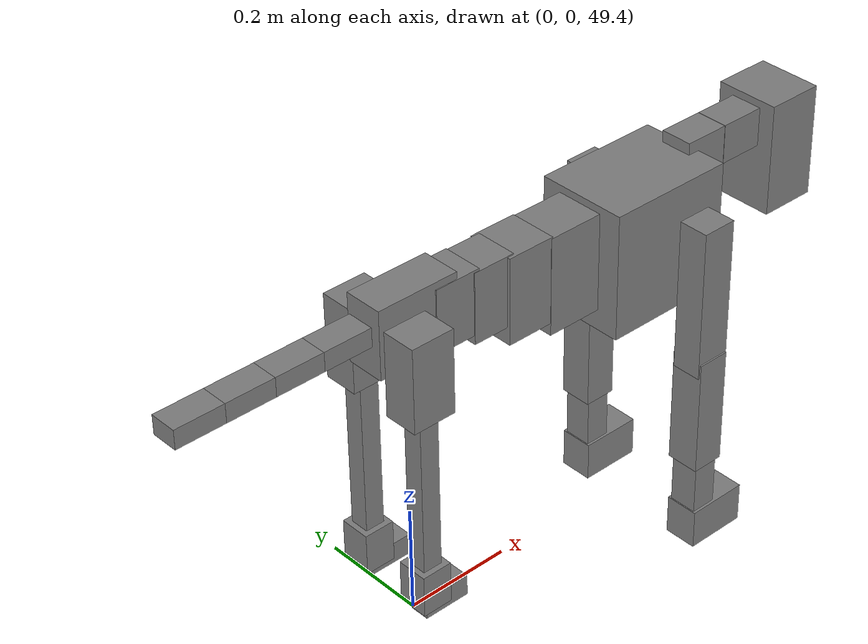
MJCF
<mujoco model="dog">

    <default>
        <joint armature="0.02" stiffness="1" damping="0.2" limited="true"/>
        <geom condim="3" friction="1 0.05 0.05" margin="0.01"/>
        <motor ctrllimited="true" ctrlrange="-1.0 1.0" forcelimited="true" gear="50"/>
    </default>

    <compiler inertiafromgeom="true" angle="radian"/>

    <option timestep="0.016" iterations="50" tolerance="1e-10" solver="Newton" jacobian="dense" cone="pyramidal"/>

    <size nconmax="20000" njmax="60000" nstack="5000000"/>
    <visual>
        <map force="0.1" zfar="30"/>
        <rgba haze="0.15 0.25 0.35 1"/>
        <quality shadowsize="2048"/>
        <global offwidth="800" offheight="800"/>
    </visual>

    <asset>
        <texture type="skybox" builtin="gradient" rgb1="0.3 0.5 0.7" rgb2="0 0 0" width="512" height="512"/>
        <texture name="texplane" type="2d" builtin="checker" rgb1=".2 .3 .4" rgb2=".1 0.15 0.2" width="512" height="512"
                 mark="cross" markrgb=".8 .8 .8"/>
        <texture name="texgeom" type="cube" builtin="flat" mark="cross" width="127" height="1278" rgb1="0.8 0.6 0.4"
                 rgb2="0.8 0.6 0.4" markrgb="1 1 1" random="0.01"/>

        <material name="matplane" reflectance="0.3" texture="texplane" texrepeat="1 1" texuniform="true"/>
        <material name="matgeom" texture="texgeom" texuniform="true" rgba="0.8 0.6 .4 1"/>
    </asset>

    <worldbody>
        <geom name="floor" pos="0 0 0" size="0 0 .25" type="plane" material="matplane" condim="3"/>

        <light directional="false" diffuse=".2 .2 .2" specular="0 0 0" pos="0 0 5" dir="0 0 -1" castshadow="false"/>
        <light mode="targetbodycom" target="torso" directional="false" diffuse=".8 .8 .8" specular="0.3 0.3 0.3"
               pos="0 0 4.0" dir="0 0 -1"/>

        <body name="root" pos="0 0 50">
            <freejoint name="root_1"/>
            <geom type="box" pos="0 0 -0.02" size="0.0774  0.0358  0.063" density="2030"/>

            <body name="spine1" pos="0.054 0 0">
                <joint name="spine1_y" axis="0 1 0" range="0 0.7" limited="true"/>
                <geom type="box" pos="0.02375 0 -0.03" size="0.04375  0.0375  0.05985" density="2030"/>

                <body name="spine2" pos="0.0612 0 0">
                    <joint name="spine2_y" axis="0 1 0" range="-0.15 0.15" limited="true"/>
                    <geom type="box" pos="0.03555  0  -0.04" size="0.04055  0.039  0.06615" density="2030"/>

                    <body name="spine3" pos="0.0730 0 0">
                        <joint name="spine3_y" axis="0 1 0" range="-0.15 0.15" limited="true"/>
                        <geom type="box" pos="0.03555  0  -0.057" size="0.04555  0.0445  0.081" density="2030"/>

                        <body name="spine4" pos="0.0780 0 0">
                            <joint name="spine4_y" axis="0 1 0" range="-0.15 0.15" limited="true"/>
                            <geom type="box" pos="0.05265  0  -0.07" size="0.05265  0.045  0.09135" density="2030"/>

                            <body name="torso" pos="0.1082 0 0">
                                <joint name="torso_y" axis="0 1 0" range="-0.15 0.15" limited="true"/>
                                <geom type="box" pos="0.11925  0  -0.085" size="0.11925  0.085  0.11745"
                                      density="2030"/>

                                <body name="neck1" pos="0.2160  0   0.0180">
                                    <joint name="neck1_y" axis="0 1 0" range="-1.2  -1" limited="true"/>
                                    <geom type="box" pos="0.0423  0  0" size="0.0423  0.03  0.036" density="2325"/>

                                    <body name="neck2" pos="0.0853  0  0">
                                        <joint name="neck2_y" axis="0 1 0" range="0.1  0" limited="true"/>
                                        <geom type="box" pos="0.0423  0  0" size="0.0423  0.03  0.036" density="2325"/>

                                        <body name="head" pos="0.0853  0  0">
                                            <joint name="head_y" axis="0 1 0" range="-0.3  -0.2" limited="true"/>
                                            <geom type="box" pos="0.0531  0  -0.055" size="0.0531  0.06  0.1044"
                                                  density="4030"/>

                                        </body>
                                    </body>
                                </body>

                                <body name="front_shoulder" pos="0.156  0   -0.0480">
                                    <joint name="front_shoulder_y" axis="0 1 0" range="-1 1.5" limited="true"/>
                                    <geom type="box" pos="0 0.13 -0.1149" size="0.0325  0.0278  0.1416" density="1158"/>
                                    <geom type="box" pos="0 -0.13 -0.1149" size="0.0325  0.0278  0.1416"
                                          density="1158"/>

                                    <body name="front_elbow" pos="0  0  -0.2299">
                                        <joint name="front_elbow_y" axis="0 1 0" range="-2 0" limited="true"/>
                                        <geom type="box" pos="0 0.13 -0.1102" size="0.0302  0.0309  0.1102"
                                              density="1081"/>
                                        <geom type="box" pos="0 -0.13 -0.1102" size="0.0302  0.0309  0.1102"
                                              density="1081"/>

                                        <body name="front_wrist" pos="0  0  -0.2205">
                                            <joint name="front_wrist_y" axis="0 1 0" range="-0.2 0" limited="true"/>
                                            <geom type="box" pos="0 0.13 -0.0545" size="0.0238  0.0264  0.0676"
                                                  density="1664"/>
                                            <geom type="box" pos="0 -0.13 -0.0545" size="0.0238  0.0264  0.0676"
                                                  density="1664"/>

                                            <body name="front_finger_end" pos="0  0  -0.1090">
                                                <joint name="front_finger_y" axis="0 1 0" range="-0.4 1"
                                                       limited="true"/>
                                                <geom type="box" pos="0.0313  0.13  -0.0222"
                                                      size="0.0573  0.0313  0.0372" density="1515"/>
                                                <geom type="box" pos="0.0313  -0.13  -0.0222"
                                                      size="0.0573  0.0313  0.0372" density="1515"/>

                                            </body>

                                        </body>
                                    </body>
                                </body>

                            </body>
                        </body>
                    </body>
                </body>
            </body>

            <body name="back_hip" pos="-0.03 0 -0.018">
                <joint name="back_hip_y" axis="0 1 0" range="-1.5 0.3" limited="true"/>
                <geom type="box" pos="0 0.07 -0.0549" size="0.0406  0.0319  0.0777" density="1154"/>
                <geom type="box" pos="0 -0.07 -0.0549" size="0.0406  0.0319  0.0777" density="1154"/>

                <body name="back_knee" pos="0  0  -0.1099">
                    <joint name="back_knee_y" axis="0 1 0" range="0 2.8" limited="true"/>
                    <geom type="box" pos="0 0.07 -0.1638" size="0.0182  0.0180  0.1794" density="1227"/>
                    <geom type="box" pos="0 -0.07 -0.1638" size="0.0182  0.0180  0.1794" density="1227"/>

                    <body name="back_ankle" pos="0  0  -0.3277">
                        <joint name="back_ankle_y" axis="0 1 0" range="-2.2 0" limited="true"/>
                        <geom type="box" pos="0 0.07 -0.0278" size="0.0284  0.0284  0.0391" density="1284"/>
                        <geom type="box" pos="0 -0.07 -0.0278" size="0.0284  0.0284  0.0391" density="1284"/>

                        <body name="back_toe_end" pos="0  0  -0.0556">
                            <joint name="back_toe_y" axis="0 1 0" range="-0.4 1" limited="true"/>
                            <geom type="box" pos="0.0237  0.07  -0.0048" size="0.0434  0.0237  0.0198" density="1515"/>
                            <geom type="box" pos="0.0237  -0.07  -0.0048" size="0.0434  0.0237  0.0198" density="1515"/>

                        </body>
                    </body>
                </body>
            </body>

            <body name="tail1" pos="-0.074 0 -0.006">
                <joint name="tail1_y" axis="0 1 0" range="-0.2 0.2" limited="true"/>
                <geom type="box" pos="-0.0536  0  0" size="0.045  0.025  0.0175" density="1587"/>

                <body name="tail2" pos="-0.09 0 0">
                    <joint name="tail2_y" axis="0 1 0" range="-0.2 0.2" limited="true"/>
                    <geom type="box" pos="-0.0536  0  0" size="0.045  0.025  0.0175" density="1587"/>

                    <body name="tail3" pos="-0.09 0 0">
                        <joint name="tail3_y" axis="0 1 0" range="-0.2 0.2" limited="true"/>
                        <geom type="box" pos="-0.0536  0  0" size="0.045  0.025  0.0175" density="1587"/>

                        <body name="tail4" pos="-0.09 0 0">
                            <joint name="tail4_y" axis="0 1 0" range="-0.2 0.2" limited="true"/>
                            <geom type="box" pos="-0.0536  0  0" size="0.045  0.025  0.0175" density="1587"/>

                        </body>
                    </body>
                </body>
            </body>
        </body>
    </worldbody>

    <actuator>
        <motor joint="spine1_y" forcerange="-150 150     "/>
        <motor joint="spine2_y" forcerange="-150 150     "/>
        <motor joint="spine3_y" forcerange="-150 150     "/>
        <motor joint="spine4_y" forcerange="-150 150     "/>
        <motor joint="torso_y" forcerange="-150 150     "/>
        <motor joint="neck1_y" forcerange="-100 100       "/>
        <motor joint="neck2_y" forcerange="-100 100       "/>
        <motor joint="head_y" forcerange="-150 150       "/>
        <motor joint="front_shoulder_y" forcerange="-111.46 174.00"/>
        <motor joint="front_elbow_y" forcerange="-194.43 130.23"/>
        <motor joint="front_wrist_y" forcerange="-112.26 99.01"/>
        <motor joint="front_finger_y" forcerange="-98.74 28.06"/>
        <motor joint="back_hip_y" forcerange="-341.47 283.31"/>
        <motor joint="back_knee_y" forcerange="-214.53 246.86"/>
        <motor joint="back_angle_y" forcerange="-175.23 179.66"/>
        <motor joint="back_toe_y" forcerange="-77.47 32.09"/>
        <motor joint="tail1_y" forcerange="-50 50     "/>
        <motor joint="tail2_y" forcerange="-50 50     "/>
        <motor joint="tail3_y" forcerange="-50 50     "/>
        <motor joint="tail4_y" forcerange="-50 50     "/>
    </actuator>
</mujoco>
